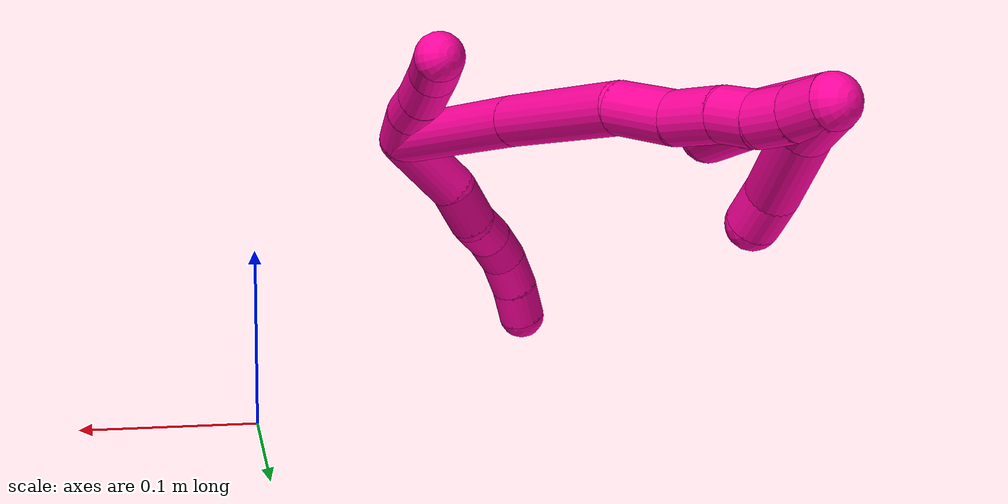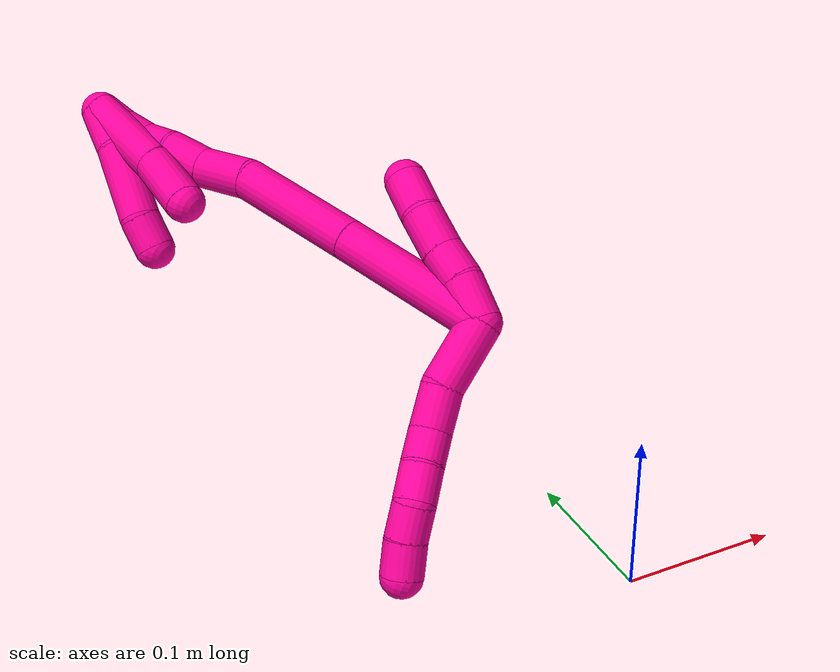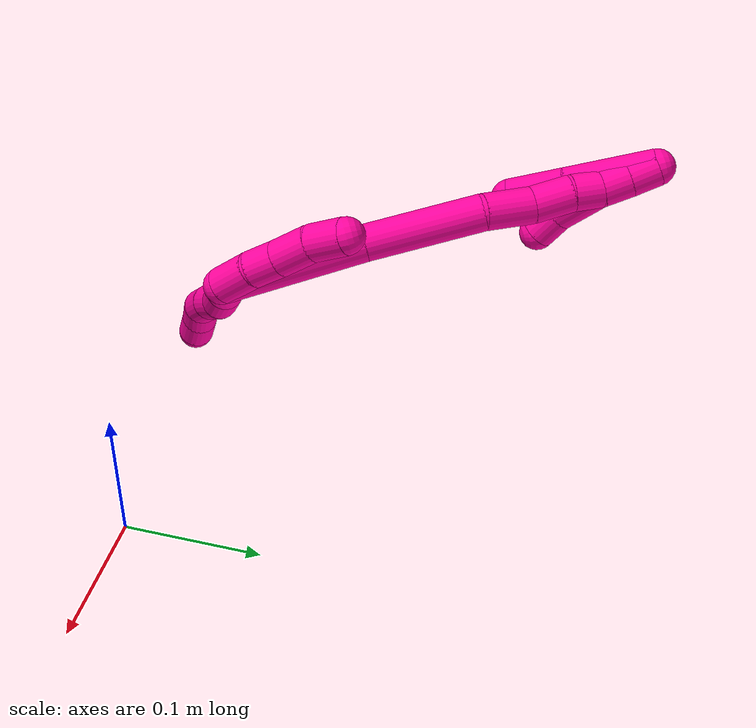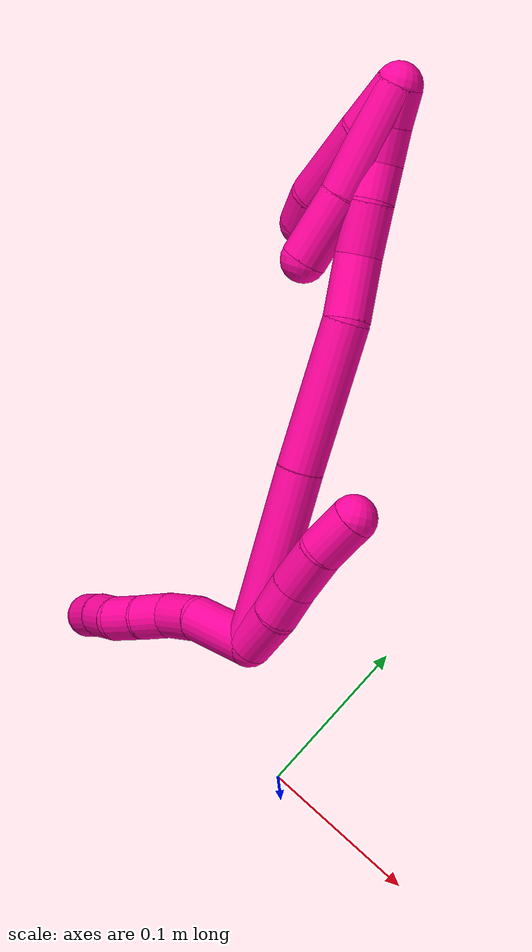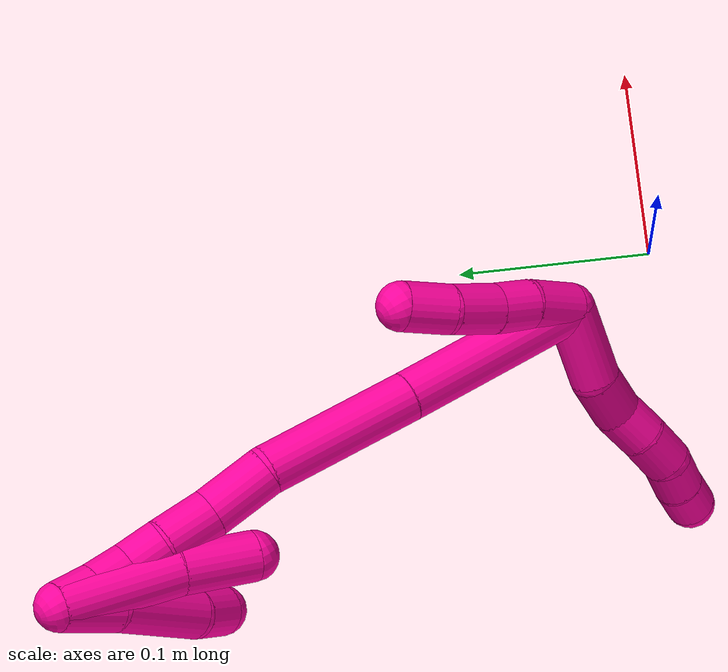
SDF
<sdf version="1.7">
 <world name="default">
  <model name="18">
   <static>0</static>
   <link name="18">
    <collision name="collision-cylinder-e_1_2_8">
     <pose>-0.016632 -0.012389 -0.001388 1.68233 -0.927597 -1.01997</pose>
     <geometry><cylinder><radius>0.0125</radius><length>0.041571</length></cylinder></geometry>
     <surface>
      <friction><ode><mu>1.16</mu><mu2>1.16</mu2><slip1>0</slip1><slip2>0</slip2></ode></friction>
      <contact><ode><kp>1e+06</kp><kd>1</kd><max_vel>0</max_vel><min_depth>0.001</min_depth></ode></contact>
     </surface>
    </collision>
    <visual name="visual-cylinder-e_1_2_8">
     <pose>-0.016632 -0.012389 -0.001388 1.68233 -0.927597 -1.01997</pose>
     <geometry><cylinder><radius>0.0125</radius><length>0.041571</length></cylinder></geometry>
     <material><ambient>1 0.007843 0.615686 1</ambient></material>
    </visual>
    <collision name="collision-cylinder-e_2_8_9">
     <pose>-0.043995 -0.030844 -0.006796 2.15614 -0.974821 -1.558</pose>
     <geometry><cylinder><radius>0.0125</radius><length>0.025931</length></cylinder></geometry>
     <surface>
      <friction><ode><mu>1.16</mu><mu2>1.16</mu2><slip1>0</slip1><slip2>0</slip2></ode></friction>
      <contact><ode><kp>1e+06</kp><kd>1</kd><max_vel>0</max_vel><min_depth>0.001</min_depth></ode></contact>
     </surface>
    </collision>
    <visual name="visual-cylinder-e_2_8_9">
     <pose>-0.043995 -0.030844 -0.006796 2.15614 -0.974821 -1.558</pose>
     <geometry><cylinder><radius>0.0125</radius><length>0.025931</length></cylinder></geometry>
     <material><ambient>1 0.007843 0.615686 1</ambient></material>
    </visual>
    <collision name="collision-cylinder-e_3_9_10">
     <pose>-0.060824 -0.043579 -0.015119 2.14372 -0.655229 -1.11531</pose>
     <geometry><cylinder><radius>0.0125</radius><length>0.020017</length></cylinder></geometry>
     <surface>
      <friction><ode><mu>1.16</mu><mu2>1.16</mu2><slip1>0</slip1><slip2>0</slip2></ode></friction>
      <contact><ode><kp>1e+06</kp><kd>1</kd><max_vel>0</max_vel><min_depth>0.001</min_depth></ode></contact>
     </surface>
    </collision>
    <visual name="visual-cylinder-e_3_9_10">
     <pose>-0.060824 -0.043579 -0.015119 2.14372 -0.655229 -1.11531</pose>
     <geometry><cylinder><radius>0.0125</radius><length>0.020017</length></cylinder></geometry>
     <material><ambient>1 0.007843 0.615686 1</ambient></material>
    </visual>
    <collision name="collision-cylinder-e_4_10_11">
     <pose>-0.074526 -0.056233 -0.023797 2.20207 -0.797954 -1.38606</pose>
     <geometry><cylinder><radius>0.0125</radius><length>0.021241</length></cylinder></geometry>
     <surface>
      <friction><ode><mu>1.16</mu><mu2>1.16</mu2><slip1>0</slip1><slip2>0</slip2></ode></friction>
      <contact><ode><kp>1e+06</kp><kd>1</kd><max_vel>0</max_vel><min_depth>0.001</min_depth></ode></contact>
     </surface>
    </collision>
    <visual name="visual-cylinder-e_4_10_11">
     <pose>-0.074526 -0.056233 -0.023797 2.20207 -0.797954 -1.38606</pose>
     <geometry><cylinder><radius>0.0125</radius><length>0.021241</length></cylinder></geometry>
     <material><ambient>1 0.007843 0.615686 1</ambient></material>
    </visual>
    <collision name="collision-cylinder-e_5_11_12">
     <pose>-0.091409 -0.065494 -0.030939 2.27224 -1.13809 -1.88581</pose>
     <geometry><cylinder><radius>0.0125</radius><length>0.020444</length></cylinder></geometry>
     <surface>
      <friction><ode><mu>1.16</mu><mu2>1.16</mu2><slip1>0</slip1><slip2>0</slip2></ode></friction>
      <contact><ode><kp>1e+06</kp><kd>1</kd><max_vel>0</max_vel><min_depth>0.001</min_depth></ode></contact>
     </surface>
    </collision>
    <visual name="visual-cylinder-e_5_11_12">
     <pose>-0.091409 -0.065494 -0.030939 2.27224 -1.13809 -1.88581</pose>
     <geometry><cylinder><radius>0.0125</radius><length>0.020444</length></cylinder></geometry>
     <material><ambient>1 0.007843 0.615686 1</ambient></material>
    </visual>
    <collision name="collision-cylinder-e_6_12_6">
     <pose>-0.110056 -0.071323 -0.037427 2.54002 -1.12169 -2.22417</pose>
     <geometry><cylinder><radius>0.0125</radius><length>0.020796</length></cylinder></geometry>
     <surface>
      <friction><ode><mu>1.16</mu><mu2>1.16</mu2><slip1>0</slip1><slip2>0</slip2></ode></friction>
      <contact><ode><kp>1e+06</kp><kd>1</kd><max_vel>0</max_vel><min_depth>0.001</min_depth></ode></contact>
     </surface>
    </collision>
    <visual name="visual-cylinder-e_6_12_6">
     <pose>-0.110056 -0.071323 -0.037427 2.54002 -1.12169 -2.22417</pose>
     <geometry><cylinder><radius>0.0125</radius><length>0.020796</length></cylinder></geometry>
     <material><ambient>1 0.007843 0.615686 1</ambient></material>
    </visual>
    <collision name="collision-cylinder-e_1_2_13">
     <pose>0.006619 0.003065 0.011278 -0.265389 0.51533 -0.070321</pose>
     <geometry><cylinder><radius>0.0125</radius><length>0.026863</length></cylinder></geometry>
     <surface>
      <friction><ode><mu>1.16</mu><mu2>1.16</mu2><slip1>0</slip1><slip2>0</slip2></ode></friction>
      <contact><ode><kp>1e+06</kp><kd>1</kd><max_vel>0</max_vel><min_depth>0.001</min_depth></ode></contact>
     </surface>
    </collision>
    <visual name="visual-cylinder-e_1_2_13">
     <pose>0.006619 0.003065 0.011278 -0.265389 0.51533 -0.070321</pose>
     <geometry><cylinder><radius>0.0125</radius><length>0.026863</length></cylinder></geometry>
     <material><ambient>1 0.007843 0.615686 1</ambient></material>
    </visual>
    <collision name="collision-cylinder-e_2_13_14">
     <pose>0.016771 0.008034 0.032284 -0.193241 0.342347 -0.033506</pose>
     <geometry><cylinder><radius>0.0125</radius><length>0.021047</length></cylinder></geometry>
     <surface>
      <friction><ode><mu>1.16</mu><mu2>1.16</mu2><slip1>0</slip1><slip2>0</slip2></ode></friction>
      <contact><ode><kp>1e+06</kp><kd>1</kd><max_vel>0</max_vel><min_depth>0.001</min_depth></ode></contact>
     </surface>
    </collision>
    <visual name="visual-cylinder-e_2_13_14">
     <pose>0.016771 0.008034 0.032284 -0.193241 0.342347 -0.033506</pose>
     <geometry><cylinder><radius>0.0125</radius><length>0.021047</length></cylinder></geometry>
     <material><ambient>1 0.007843 0.615686 1</ambient></material>
    </visual>
    <collision name="collision-cylinder-e_3_14_15">
     <pose>0.0258 0.012725 0.05377 -0.232773 0.426877 -0.050669</pose>
     <geometry><cylinder><radius>0.0125</radius><length>0.026549</length></cylinder></geometry>
     <surface>
      <friction><ode><mu>1.16</mu><mu2>1.16</mu2><slip1>0</slip1><slip2>0</slip2></ode></friction>
      <contact><ode><kp>1e+06</kp><kd>1</kd><max_vel>0</max_vel><min_depth>0.001</min_depth></ode></contact>
     </surface>
    </collision>
    <visual name="visual-cylinder-e_3_14_15">
     <pose>0.0258 0.012725 0.05377 -0.232773 0.426877 -0.050669</pose>
     <geometry><cylinder><radius>0.0125</radius><length>0.026549</length></cylinder></geometry>
     <material><ambient>1 0.007843 0.615686 1</ambient></material>
    </visual>
    <collision name="collision-cylinder-e_4_15_5">
     <pose>0.035178 0.020376 0.076679 -0.411241 0.308839 -0.064908</pose>
     <geometry><cylinder><radius>0.0125</radius><length>0.025541</length></cylinder></geometry>
     <surface>
      <friction><ode><mu>1.16</mu><mu2>1.16</mu2><slip1>0</slip1><slip2>0</slip2></ode></friction>
      <contact><ode><kp>1e+06</kp><kd>1</kd><max_vel>0</max_vel><min_depth>0.001</min_depth></ode></contact>
     </surface>
    </collision>
    <visual name="visual-cylinder-e_4_15_5">
     <pose>0.035178 0.020376 0.076679 -0.411241 0.308839 -0.064908</pose>
     <geometry><cylinder><radius>0.0125</radius><length>0.025541</length></cylinder></geometry>
     <material><ambient>1 0.007843 0.615686 1</ambient></material>
    </visual>
    <collision name="collision-cylinder-e_1_2_16">
     <pose>5.5e-05 -0.0004 0.048866 0.008191 0.001129 5e-06</pose>
     <geometry><cylinder><radius>0.0125</radius><length>0.097735</length></cylinder></geometry>
     <surface>
      <friction><ode><mu>1.16</mu><mu2>1.16</mu2><slip1>0</slip1><slip2>0</slip2></ode></friction>
      <contact><ode><kp>1e+06</kp><kd>1</kd><max_vel>0</max_vel><min_depth>0.001</min_depth></ode></contact>
     </surface>
    </collision>
    <visual name="visual-cylinder-e_1_2_16">
     <pose>5.5e-05 -0.0004 0.048866 0.008191 0.001129 5e-06</pose>
     <geometry><cylinder><radius>0.0125</radius><length>0.097735</length></cylinder></geometry>
     <material><ambient>1 0.007843 0.615686 1</ambient></material>
    </visual>
    <collision name="collision-cylinder-e_2_16_17">
     <pose>-0.000812 -8.8e-05 0.137961 -0.01772 -0.022911 0.000203</pose>
     <geometry><cylinder><radius>0.0125</radius><length>0.080492</length></cylinder></geometry>
     <surface>
      <friction><ode><mu>1.16</mu><mu2>1.16</mu2><slip1>0</slip1><slip2>0</slip2></ode></friction>
      <contact><ode><kp>1e+06</kp><kd>1</kd><max_vel>0</max_vel><min_depth>0.001</min_depth></ode></contact>
     </surface>
    </collision>
    <visual name="visual-cylinder-e_2_16_17">
     <pose>-0.000812 -8.8e-05 0.137961 -0.01772 -0.022911 0.000203</pose>
     <geometry><cylinder><radius>0.0125</radius><length>0.080492</length></cylinder></geometry>
     <material><ambient>1 0.007843 0.615686 1</ambient></material>
    </visual>
    <collision name="collision-cylinder-e_3_17_18">
     <pose>-0.006037 -0.000365 0.194488 0.0607 -0.257732 -0.007868</pose>
     <geometry><cylinder><radius>0.0125</radius><length>0.033771</length></cylinder></geometry>
     <surface>
      <friction><ode><mu>1.16</mu><mu2>1.16</mu2><slip1>0</slip1><slip2>0</slip2></ode></friction>
      <contact><ode><kp>1e+06</kp><kd>1</kd><max_vel>0</max_vel><min_depth>0.001</min_depth></ode></contact>
     </surface>
    </collision>
    <visual name="visual-cylinder-e_3_17_18">
     <pose>-0.006037 -0.000365 0.194488 0.0607 -0.257732 -0.007868</pose>
     <geometry><cylinder><radius>0.0125</radius><length>0.033771</length></cylinder></geometry>
     <material><ambient>1 0.007843 0.615686 1</ambient></material>
    </visual>
    <collision name="collision-cylinder-e_4_18_19">
     <pose>-0.011094 -0.002219 0.2246 0.062401 -0.054323 -0.001696</pose>
     <geometry><cylinder><radius>0.0125</radius><length>0.027725</length></cylinder></geometry>
     <surface>
      <friction><ode><mu>1.16</mu><mu2>1.16</mu2><slip1>0</slip1><slip2>0</slip2></ode></friction>
      <contact><ode><kp>1e+06</kp><kd>1</kd><max_vel>0</max_vel><min_depth>0.001</min_depth></ode></contact>
     </surface>
    </collision>
    <visual name="visual-cylinder-e_4_18_19">
     <pose>-0.011094 -0.002219 0.2246 0.062401 -0.054323 -0.001696</pose>
     <geometry><cylinder><radius>0.0125</radius><length>0.027725</length></cylinder></geometry>
     <material><ambient>1 0.007843 0.615686 1</ambient></material>
    </visual>
    <collision name="collision-cylinder-e_5_19_20">
     <pose>-0.014055 -0.003301 0.248284 0.02216 -0.220088 -0.002449</pose>
     <geometry><cylinder><radius>0.0125</radius><length>0.020229</length></cylinder></geometry>
     <surface>
      <friction><ode><mu>1.16</mu><mu2>1.16</mu2><slip1>0</slip1><slip2>0</slip2></ode></friction>
      <contact><ode><kp>1e+06</kp><kd>1</kd><max_vel>0</max_vel><min_depth>0.001</min_depth></ode></contact>
     </surface>
    </collision>
    <visual name="visual-cylinder-e_5_19_20">
     <pose>-0.014055 -0.003301 0.248284 0.02216 -0.220088 -0.002449</pose>
     <geometry><cylinder><radius>0.0125</radius><length>0.020229</length></cylinder></geometry>
     <material><ambient>1 0.007843 0.615686 1</ambient></material>
    </visual>
    <collision name="collision-cylinder-e_6_20_21">
     <pose>-0.01611 -0.004226 0.268149 0.070525 0.015226 0.000537</pose>
     <geometry><cylinder><radius>0.0125</radius><length>0.020048</length></cylinder></geometry>
     <surface>
      <friction><ode><mu>1.16</mu><mu2>1.16</mu2><slip1>0</slip1><slip2>0</slip2></ode></friction>
      <contact><ode><kp>1e+06</kp><kd>1</kd><max_vel>0</max_vel><min_depth>0.001</min_depth></ode></contact>
     </surface>
    </collision>
    <visual name="visual-cylinder-e_6_20_21">
     <pose>-0.01611 -0.004226 0.268149 0.070525 0.015226 0.000537</pose>
     <geometry><cylinder><radius>0.0125</radius><length>0.020048</length></cylinder></geometry>
     <material><ambient>1 0.007843 0.615686 1</ambient></material>
    </visual>
    <collision name="collision-cylinder-e_7_21_1">
     <pose>-0.014811 -0.005285 0.288075 0.035553 0.11493 0.002046</pose>
     <geometry><cylinder><radius>0.0125</radius><length>0.02</length></cylinder></geometry>
     <surface>
      <friction><ode><mu>1.16</mu><mu2>1.16</mu2><slip1>0</slip1><slip2>0</slip2></ode></friction>
      <contact><ode><kp>1e+06</kp><kd>1</kd><max_vel>0</max_vel><min_depth>0.001</min_depth></ode></contact>
     </surface>
    </collision>
    <visual name="visual-cylinder-e_7_21_1">
     <pose>-0.014811 -0.005285 0.288075 0.035553 0.11493 0.002046</pose>
     <geometry><cylinder><radius>0.0125</radius><length>0.02</length></cylinder></geometry>
     <material><ambient>1 0.007843 0.615686 1</ambient></material>
    </visual>
    <collision name="collision-cylinder-e_1_1_22">
     <pose>-0.019225 -0.010223 0.284596 2.81205 -0.373994 -1.69961</pose>
     <geometry><cylinder><radius>0.0125</radius><length>0.030443</length></cylinder></geometry>
     <surface>
      <friction><ode><mu>1.16</mu><mu2>1.16</mu2><slip1>0</slip1><slip2>0</slip2></ode></friction>
      <contact><ode><kp>1e+06</kp><kd>1</kd><max_vel>0</max_vel><min_depth>0.001</min_depth></ode></contact>
     </surface>
    </collision>
    <visual name="visual-cylinder-e_1_1_22">
     <pose>-0.019225 -0.010223 0.284596 2.81205 -0.373994 -1.69961</pose>
     <geometry><cylinder><radius>0.0125</radius><length>0.030443</length></cylinder></geometry>
     <material><ambient>1 0.007843 0.615686 1</ambient></material>
    </visual>
    <collision name="collision-cylinder-e_2_22_23">
     <pose>-0.03836 -0.020201 0.251657 2.87226 -0.590208 -2.30305</pose>
     <geometry><cylinder><radius>0.0125</radius><length>0.048779</length></cylinder></geometry>
     <surface>
      <friction><ode><mu>1.16</mu><mu2>1.16</mu2><slip1>0</slip1><slip2>0</slip2></ode></friction>
      <contact><ode><kp>1e+06</kp><kd>1</kd><max_vel>0</max_vel><min_depth>0.001</min_depth></ode></contact>
     </surface>
    </collision>
    <visual name="visual-cylinder-e_2_22_23">
     <pose>-0.03836 -0.020201 0.251657 2.87226 -0.590208 -2.30305</pose>
     <geometry><cylinder><radius>0.0125</radius><length>0.048779</length></cylinder></geometry>
     <material><ambient>1 0.007843 0.615686 1</ambient></material>
    </visual>
    <collision name="collision-cylinder-e_3_23_4">
     <pose>-0.058311 -0.025505 0.223923 -3.13099 -0.660954 3.1107</pose>
     <geometry><cylinder><radius>0.0125</radius><length>0.020778</length></cylinder></geometry>
     <surface>
      <friction><ode><mu>1.16</mu><mu2>1.16</mu2><slip1>0</slip1><slip2>0</slip2></ode></friction>
      <contact><ode><kp>1e+06</kp><kd>1</kd><max_vel>0</max_vel><min_depth>0.001</min_depth></ode></contact>
     </surface>
    </collision>
    <visual name="visual-cylinder-e_3_23_4">
     <pose>-0.058311 -0.025505 0.223923 -3.13099 -0.660954 3.1107</pose>
     <geometry><cylinder><radius>0.0125</radius><length>0.020778</length></cylinder></geometry>
     <material><ambient>1 0.007843 0.615686 1</ambient></material>
    </visual>
    <collision name="collision-cylinder-e_1_1_24">
     <pose>-0.01577 -0.01102 0.267784 2.96533 -0.068502 -0.739858</pose>
     <geometry><cylinder><radius>0.0125</radius><length>0.061533</length></cylinder></geometry>
     <surface>
      <friction><ode><mu>1.16</mu><mu2>1.16</mu2><slip1>0</slip1><slip2>0</slip2></ode></friction>
      <contact><ode><kp>1e+06</kp><kd>1</kd><max_vel>0</max_vel><min_depth>0.001</min_depth></ode></contact>
     </surface>
    </collision>
    <visual name="visual-cylinder-e_1_1_24">
     <pose>-0.01577 -0.01102 0.267784 2.96533 -0.068502 -0.739858</pose>
     <geometry><cylinder><radius>0.0125</radius><length>0.061533</length></cylinder></geometry>
     <material><ambient>1 0.007843 0.615686 1</ambient></material>
    </visual>
    <collision name="collision-cylinder-e_2_24_3">
     <pose>-0.020658 -0.021192 0.219147 2.88722 -0.145144 -1.0339</pose>
     <geometry><cylinder><radius>0.0125</radius><length>0.038467</length></cylinder></geometry>
     <surface>
      <friction><ode><mu>1.16</mu><mu2>1.16</mu2><slip1>0</slip1><slip2>0</slip2></ode></friction>
      <contact><ode><kp>1e+06</kp><kd>1</kd><max_vel>0</max_vel><min_depth>0.001</min_depth></ode></contact>
     </surface>
    </collision>
    <visual name="visual-cylinder-e_2_24_3">
     <pose>-0.020658 -0.021192 0.219147 2.88722 -0.145144 -1.0339</pose>
     <geometry><cylinder><radius>0.0125</radius><length>0.038467</length></cylinder></geometry>
     <material><ambient>1 0.007843 0.615686 1</ambient></material>
    </visual>
    <collision name="collision-sphere-3">
     <pose>-0.02344 -0.025981 0.200728 0 -0 0</pose>
     <geometry><sphere><radius>0.0125</radius></sphere></geometry>
     <surface>
      <friction><ode><mu>1.16</mu><mu2>1.16</mu2><slip1>0</slip1><slip2>0</slip2></ode></friction>
      <contact><ode><kp>1e+06</kp><kd>1</kd><max_vel>0</max_vel><min_depth>0.001</min_depth></ode></contact>
     </surface>
    </collision>
    <visual name="visual-sphere-3">
     <pose>-0.02344 -0.025981 0.200728 0 -0 0</pose>
     <geometry><sphere><radius>0.0125</radius></sphere></geometry>
     <material><ambient>1 0.007843 0.615686 1</ambient></material>
    </visual>
    <collision name="collision-sphere-24">
     <pose>-0.017876 -0.016403 0.237566 0 -0 0</pose>
     <geometry><sphere><radius>0.0125</radius></sphere></geometry>
     <surface>
      <friction><ode><mu>1.16</mu><mu2>1.16</mu2><slip1>0</slip1><slip2>0</slip2></ode></friction>
      <contact><ode><kp>1e+06</kp><kd>1</kd><max_vel>0</max_vel><min_depth>0.001</min_depth></ode></contact>
     </surface>
    </collision>
    <visual name="visual-sphere-24">
     <pose>-0.017876 -0.016403 0.237566 0 -0 0</pose>
     <geometry><sphere><radius>0.0125</radius></sphere></geometry>
     <material><ambient>1 0.007843 0.615686 1</ambient></material>
    </visual>
    <collision name="collision-sphere-4">
     <pose>-0.064688 -0.025418 0.215722 0 -0 0</pose>
     <geometry><sphere><radius>0.0125</radius></sphere></geometry>
     <surface>
      <friction><ode><mu>1.16</mu><mu2>1.16</mu2><slip1>0</slip1><slip2>0</slip2></ode></friction>
      <contact><ode><kp>1e+06</kp><kd>1</kd><max_vel>0</max_vel><min_depth>0.001</min_depth></ode></contact>
     </surface>
    </collision>
    <visual name="visual-sphere-4">
     <pose>-0.064688 -0.025418 0.215722 0 -0 0</pose>
     <geometry><sphere><radius>0.0125</radius></sphere></geometry>
     <material><ambient>1 0.007843 0.615686 1</ambient></material>
    </visual>
    <collision name="collision-sphere-23">
     <pose>-0.051933 -0.025592 0.232124 0 -0 0</pose>
     <geometry><sphere><radius>0.0125</radius></sphere></geometry>
     <surface>
      <friction><ode><mu>1.16</mu><mu2>1.16</mu2><slip1>0</slip1><slip2>0</slip2></ode></friction>
      <contact><ode><kp>1e+06</kp><kd>1</kd><max_vel>0</max_vel><min_depth>0.001</min_depth></ode></contact>
     </surface>
    </collision>
    <visual name="visual-sphere-23">
     <pose>-0.051933 -0.025592 0.232124 0 -0 0</pose>
     <geometry><sphere><radius>0.0125</radius></sphere></geometry>
     <material><ambient>1 0.007843 0.615686 1</ambient></material>
    </visual>
    <collision name="collision-sphere-22">
     <pose>-0.024786 -0.014809 0.27119 0 -0 0</pose>
     <geometry><sphere><radius>0.0125</radius></sphere></geometry>
     <surface>
      <friction><ode><mu>1.16</mu><mu2>1.16</mu2><slip1>0</slip1><slip2>0</slip2></ode></friction>
      <contact><ode><kp>1e+06</kp><kd>1</kd><max_vel>0</max_vel><min_depth>0.001</min_depth></ode></contact>
     </surface>
    </collision>
    <visual name="visual-sphere-22">
     <pose>-0.024786 -0.014809 0.27119 0 -0 0</pose>
     <geometry><sphere><radius>0.0125</radius></sphere></geometry>
     <material><ambient>1 0.007843 0.615686 1</ambient></material>
    </visual>
    <collision name="collision-sphere-1">
     <pose>-0.013664 -0.005638 0.298003 0 -0 0</pose>
     <geometry><sphere><radius>0.0125</radius></sphere></geometry>
     <surface>
      <friction><ode><mu>1.16</mu><mu2>1.16</mu2><slip1>0</slip1><slip2>0</slip2></ode></friction>
      <contact><ode><kp>1e+06</kp><kd>1</kd><max_vel>0</max_vel><min_depth>0.001</min_depth></ode></contact>
     </surface>
    </collision>
    <visual name="visual-sphere-1">
     <pose>-0.013664 -0.005638 0.298003 0 -0 0</pose>
     <geometry><sphere><radius>0.0125</radius></sphere></geometry>
     <material><ambient>1 0.007843 0.615686 1</ambient></material>
    </visual>
    <collision name="collision-sphere-21">
     <pose>-0.015958 -0.004932 0.278147 0 -0 0</pose>
     <geometry><sphere><radius>0.0125</radius></sphere></geometry>
     <surface>
      <friction><ode><mu>1.16</mu><mu2>1.16</mu2><slip1>0</slip1><slip2>0</slip2></ode></friction>
      <contact><ode><kp>1e+06</kp><kd>1</kd><max_vel>0</max_vel><min_depth>0.001</min_depth></ode></contact>
     </surface>
    </collision>
    <visual name="visual-sphere-21">
     <pose>-0.015958 -0.004932 0.278147 0 -0 0</pose>
     <geometry><sphere><radius>0.0125</radius></sphere></geometry>
     <material><ambient>1 0.007843 0.615686 1</ambient></material>
    </visual>
    <collision name="collision-sphere-12">
     <pose>-0.100689 -0.068768 -0.033705 0 -0 0</pose>
     <geometry><sphere><radius>0.0125</radius></sphere></geometry>
     <surface>
      <friction><ode><mu>1.16</mu><mu2>1.16</mu2><slip1>0</slip1><slip2>0</slip2></ode></friction>
      <contact><ode><kp>1e+06</kp><kd>1</kd><max_vel>0</max_vel><min_depth>0.001</min_depth></ode></contact>
     </surface>
    </collision>
    <visual name="visual-sphere-12">
     <pose>-0.100689 -0.068768 -0.033705 0 -0 0</pose>
     <geometry><sphere><radius>0.0125</radius></sphere></geometry>
     <material><ambient>1 0.007843 0.615686 1</ambient></material>
    </visual>
    <collision name="collision-sphere-11">
     <pose>-0.082129 -0.062219 -0.028173 0 -0 0</pose>
     <geometry><sphere><radius>0.0125</radius></sphere></geometry>
     <surface>
      <friction><ode><mu>1.16</mu><mu2>1.16</mu2><slip1>0</slip1><slip2>0</slip2></ode></friction>
      <contact><ode><kp>1e+06</kp><kd>1</kd><max_vel>0</max_vel><min_depth>0.001</min_depth></ode></contact>
     </surface>
    </collision>
    <visual name="visual-sphere-11">
     <pose>-0.082129 -0.062219 -0.028173 0 -0 0</pose>
     <geometry><sphere><radius>0.0125</radius></sphere></geometry>
     <material><ambient>1 0.007843 0.615686 1</ambient></material>
    </visual>
    <collision name="collision-sphere-10">
     <pose>-0.066922 -0.050248 -0.019421 0 -0 0</pose>
     <geometry><sphere><radius>0.0125</radius></sphere></geometry>
     <surface>
      <friction><ode><mu>1.16</mu><mu2>1.16</mu2><slip1>0</slip1><slip2>0</slip2></ode></friction>
      <contact><ode><kp>1e+06</kp><kd>1</kd><max_vel>0</max_vel><min_depth>0.001</min_depth></ode></contact>
     </surface>
    </collision>
    <visual name="visual-sphere-10">
     <pose>-0.066922 -0.050248 -0.019421 0 -0 0</pose>
     <geometry><sphere><radius>0.0125</radius></sphere></geometry>
     <material><ambient>1 0.007843 0.615686 1</ambient></material>
    </visual>
    <collision name="collision-sphere-9">
     <pose>-0.054725 -0.03691 -0.010817 0 -0 0</pose>
     <geometry><sphere><radius>0.0125</radius></sphere></geometry>
     <surface>
      <friction><ode><mu>1.16</mu><mu2>1.16</mu2><slip1>0</slip1><slip2>0</slip2></ode></friction>
      <contact><ode><kp>1e+06</kp><kd>1</kd><max_vel>0</max_vel><min_depth>0.001</min_depth></ode></contact>
     </surface>
    </collision>
    <visual name="visual-sphere-9">
     <pose>-0.054725 -0.03691 -0.010817 0 -0 0</pose>
     <geometry><sphere><radius>0.0125</radius></sphere></geometry>
     <material><ambient>1 0.007843 0.615686 1</ambient></material>
    </visual>
    <collision name="collision-sphere-2">
     <geometry><sphere><radius>0.0125</radius></sphere></geometry>
     <surface>
      <friction><ode><mu>1.16</mu><mu2>1.16</mu2><slip1>0</slip1><slip2>0</slip2></ode></friction>
      <contact><ode><kp>1e+06</kp><kd>1</kd><max_vel>0</max_vel><min_depth>0.001</min_depth></ode></contact>
     </surface>
    </collision>
    <visual name="visual-sphere-2">
     <geometry><sphere><radius>0.0125</radius></sphere></geometry>
     <material><ambient>1 0.007843 0.615686 1</ambient></material>
    </visual>
    <collision name="collision-sphere-19">
     <pose>-0.011847 -0.003082 0.238416 0 -0 0</pose>
     <geometry><sphere><radius>0.0125</radius></sphere></geometry>
     <surface>
      <friction><ode><mu>1.16</mu><mu2>1.16</mu2><slip1>0</slip1><slip2>0</slip2></ode></friction>
      <contact><ode><kp>1e+06</kp><kd>1</kd><max_vel>0</max_vel><min_depth>0.001</min_depth></ode></contact>
     </surface>
    </collision>
    <visual name="visual-sphere-19">
     <pose>-0.011847 -0.003082 0.238416 0 -0 0</pose>
     <geometry><sphere><radius>0.0125</radius></sphere></geometry>
     <material><ambient>1 0.007843 0.615686 1</ambient></material>
    </visual>
    <collision name="collision-sphere-8">
     <pose>-0.033264 -0.024778 -0.002775 0 -0 0</pose>
     <geometry><sphere><radius>0.0125</radius></sphere></geometry>
     <surface>
      <friction><ode><mu>1.16</mu><mu2>1.16</mu2><slip1>0</slip1><slip2>0</slip2></ode></friction>
      <contact><ode><kp>1e+06</kp><kd>1</kd><max_vel>0</max_vel><min_depth>0.001</min_depth></ode></contact>
     </surface>
    </collision>
    <visual name="visual-sphere-8">
     <pose>-0.033264 -0.024778 -0.002775 0 -0 0</pose>
     <geometry><sphere><radius>0.0125</radius></sphere></geometry>
     <material><ambient>1 0.007843 0.615686 1</ambient></material>
    </visual>
    <collision name="collision-sphere-6">
     <pose>-0.119422 -0.073878 -0.041149 0 -0 0</pose>
     <geometry><sphere><radius>0.0125</radius></sphere></geometry>
     <surface>
      <friction><ode><mu>1.16</mu><mu2>1.16</mu2><slip1>0</slip1><slip2>0</slip2></ode></friction>
      <contact><ode><kp>1e+06</kp><kd>1</kd><max_vel>0</max_vel><min_depth>0.001</min_depth></ode></contact>
     </surface>
    </collision>
    <visual name="visual-sphere-6">
     <pose>-0.119422 -0.073878 -0.041149 0 -0 0</pose>
     <geometry><sphere><radius>0.0125</radius></sphere></geometry>
     <material><ambient>1 0.007843 0.615686 1</ambient></material>
    </visual>
    <collision name="collision-sphere-13">
     <pose>0.013239 0.006131 0.022556 0 -0 0</pose>
     <geometry><sphere><radius>0.0125</radius></sphere></geometry>
     <surface>
      <friction><ode><mu>1.16</mu><mu2>1.16</mu2><slip1>0</slip1><slip2>0</slip2></ode></friction>
      <contact><ode><kp>1e+06</kp><kd>1</kd><max_vel>0</max_vel><min_depth>0.001</min_depth></ode></contact>
     </surface>
    </collision>
    <visual name="visual-sphere-13">
     <pose>0.013239 0.006131 0.022556 0 -0 0</pose>
     <geometry><sphere><radius>0.0125</radius></sphere></geometry>
     <material><ambient>1 0.007843 0.615686 1</ambient></material>
    </visual>
    <collision name="collision-sphere-14">
     <pose>0.020304 0.009938 0.042013 0 -0 0</pose>
     <geometry><sphere><radius>0.0125</radius></sphere></geometry>
     <surface>
      <friction><ode><mu>1.16</mu><mu2>1.16</mu2><slip1>0</slip1><slip2>0</slip2></ode></friction>
      <contact><ode><kp>1e+06</kp><kd>1</kd><max_vel>0</max_vel><min_depth>0.001</min_depth></ode></contact>
     </surface>
    </collision>
    <visual name="visual-sphere-14">
     <pose>0.020304 0.009938 0.042013 0 -0 0</pose>
     <geometry><sphere><radius>0.0125</radius></sphere></geometry>
     <material><ambient>1 0.007843 0.615686 1</ambient></material>
    </visual>
    <collision name="collision-sphere-15">
     <pose>0.031296 0.015513 0.065527 0 -0 0</pose>
     <geometry><sphere><radius>0.0125</radius></sphere></geometry>
     <surface>
      <friction><ode><mu>1.16</mu><mu2>1.16</mu2><slip1>0</slip1><slip2>0</slip2></ode></friction>
      <contact><ode><kp>1e+06</kp><kd>1</kd><max_vel>0</max_vel><min_depth>0.001</min_depth></ode></contact>
     </surface>
    </collision>
    <visual name="visual-sphere-15">
     <pose>0.031296 0.015513 0.065527 0 -0 0</pose>
     <geometry><sphere><radius>0.0125</radius></sphere></geometry>
     <material><ambient>1 0.007843 0.615686 1</ambient></material>
    </visual>
    <collision name="collision-sphere-5">
     <pose>0.039059 0.02524 0.087831 0 -0 0</pose>
     <geometry><sphere><radius>0.0125</radius></sphere></geometry>
     <surface>
      <friction><ode><mu>1.16</mu><mu2>1.16</mu2><slip1>0</slip1><slip2>0</slip2></ode></friction>
      <contact><ode><kp>1e+06</kp><kd>1</kd><max_vel>0</max_vel><min_depth>0.001</min_depth></ode></contact>
     </surface>
    </collision>
    <visual name="visual-sphere-5">
     <pose>0.039059 0.02524 0.087831 0 -0 0</pose>
     <geometry><sphere><radius>0.0125</radius></sphere></geometry>
     <material><ambient>1 0.007843 0.615686 1</ambient></material>
    </visual>
    <collision name="collision-sphere-16">
     <pose>0.00011 -0.0008 0.097732 0 -0 0</pose>
     <geometry><sphere><radius>0.0125</radius></sphere></geometry>
     <surface>
      <friction><ode><mu>1.16</mu><mu2>1.16</mu2><slip1>0</slip1><slip2>0</slip2></ode></friction>
      <contact><ode><kp>1e+06</kp><kd>1</kd><max_vel>0</max_vel><min_depth>0.001</min_depth></ode></contact>
     </surface>
    </collision>
    <visual name="visual-sphere-16">
     <pose>0.00011 -0.0008 0.097732 0 -0 0</pose>
     <geometry><sphere><radius>0.0125</radius></sphere></geometry>
     <material><ambient>1 0.007843 0.615686 1</ambient></material>
    </visual>
    <collision name="collision-sphere-17">
     <pose>-0.001734 0.000625 0.17819 0 -0 0</pose>
     <geometry><sphere><radius>0.0125</radius></sphere></geometry>
     <surface>
      <friction><ode><mu>1.16</mu><mu2>1.16</mu2><slip1>0</slip1><slip2>0</slip2></ode></friction>
      <contact><ode><kp>1e+06</kp><kd>1</kd><max_vel>0</max_vel><min_depth>0.001</min_depth></ode></contact>
     </surface>
    </collision>
    <visual name="visual-sphere-17">
     <pose>-0.001734 0.000625 0.17819 0 -0 0</pose>
     <geometry><sphere><radius>0.0125</radius></sphere></geometry>
     <material><ambient>1 0.007843 0.615686 1</ambient></material>
    </visual>
    <collision name="collision-sphere-18">
     <pose>-0.010341 -0.001356 0.210785 0 -0 0</pose>
     <geometry><sphere><radius>0.0125</radius></sphere></geometry>
     <surface>
      <friction><ode><mu>1.16</mu><mu2>1.16</mu2><slip1>0</slip1><slip2>0</slip2></ode></friction>
      <contact><ode><kp>1e+06</kp><kd>1</kd><max_vel>0</max_vel><min_depth>0.001</min_depth></ode></contact>
     </surface>
    </collision>
    <visual name="visual-sphere-18">
     <pose>-0.010341 -0.001356 0.210785 0 -0 0</pose>
     <geometry><sphere><radius>0.0125</radius></sphere></geometry>
     <material><ambient>1 0.007843 0.615686 1</ambient></material>
    </visual>
    <collision name="collision-sphere-20">
     <pose>-0.016263 -0.003519 0.258152 0 -0 0</pose>
     <geometry><sphere><radius>0.0125</radius></sphere></geometry>
     <surface>
      <friction><ode><mu>1.16</mu><mu2>1.16</mu2><slip1>0</slip1><slip2>0</slip2></ode></friction>
      <contact><ode><kp>1e+06</kp><kd>1</kd><max_vel>0</max_vel><min_depth>0.001</min_depth></ode></contact>
     </surface>
    </collision>
    <visual name="visual-sphere-20">
     <pose>-0.016263 -0.003519 0.258152 0 -0 0</pose>
     <geometry><sphere><radius>0.0125</radius></sphere></geometry>
     <material><ambient>1 0.007843 0.615686 1</ambient></material>
    </visual>
    <inertial>
     <pose>-0.018112 -0.011721 0.129668 0 -0 0</pose>
     <mass>0.75</mass>
     <inertia><ixx>0.00011</ixx><ixy>0</ixy><ixz>0</ixz><iyy>0.000105</iyy><iyz>0</iyz><izz>5.1e-05</izz></inertia>
    </inertial>
   </link>
   <pose>-0.07487 0.056837 0.170117 -0.641087 -1.29226 -0.463694</pose>
  </model>
 </world>
</sdf>
